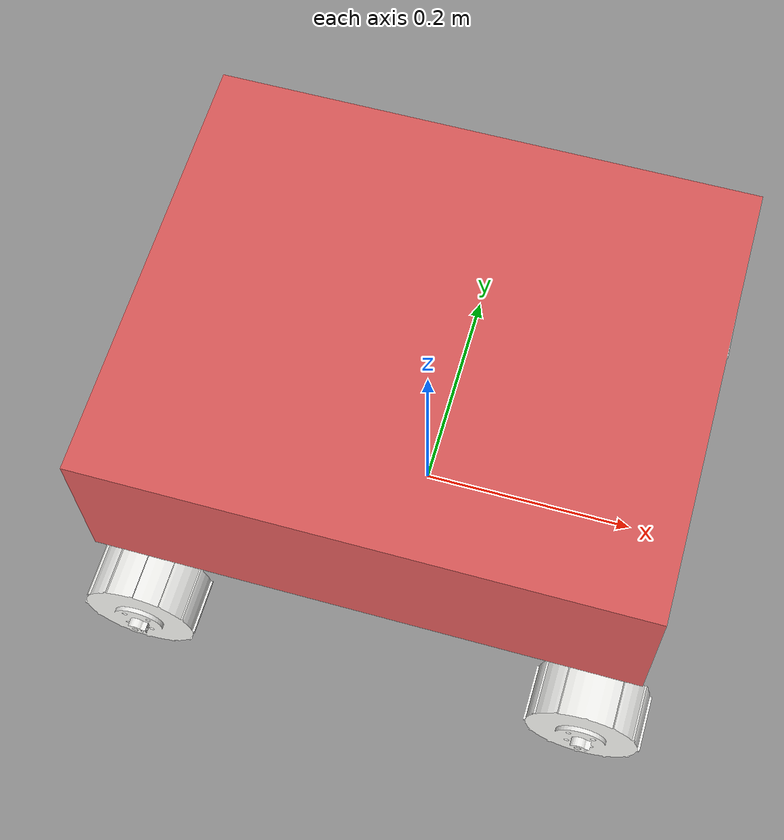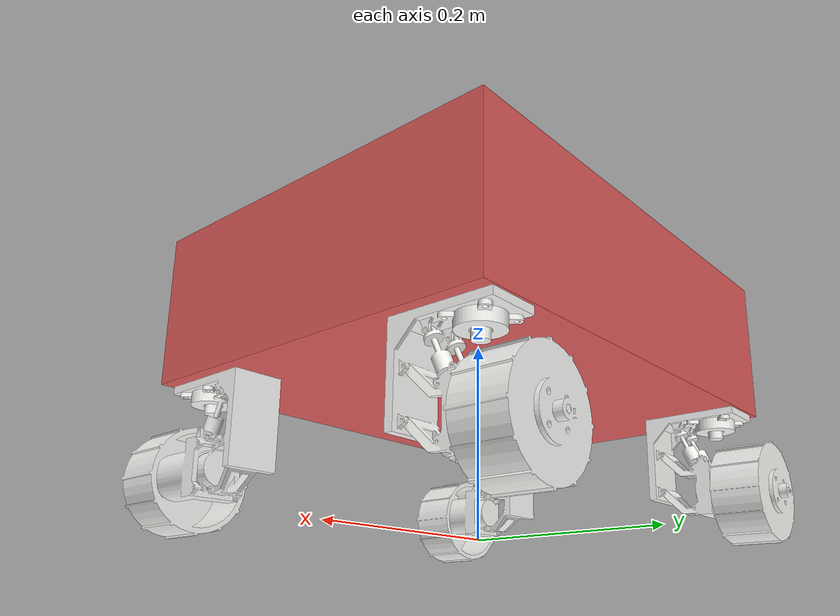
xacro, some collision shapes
<?xml version="1.0" encoding="utf-8"?>
<!-- Clean robot description only. Gazebo and ros2_control live in robot.gazebo.xacro. -->
<robot xmlns:xacro="http://www.ros.org/wiki/xacro" name="robot">
  <xacro:arg name="mesh_dir" default="package://robot_description/meshes" />

  <xacro:arg name="use_lidar" default="true" />
  <xacro:arg name="lidar_xyz" default="0.1 0 0.09" />
  <xacro:arg name="lidar_rpy" default="0 0 0" />

  <xacro:arg name="use_camera" default="true" />
  <xacro:arg name="camera_xyz" default="0.16 0 0.02" />
  <xacro:arg name="camera_rpy" default="0 0 0" />

  <xacro:include filename="robot.core.xacro" />
  <xacro:include filename="robot.lidar.xacro" />
  <xacro:include filename="robot.camera.xacro" />
  <xacro:robot_robot mesh_dir="$(arg mesh_dir)" />

  <xacro:if value="$(arg use_lidar)">
    <xacro:robot_lidar
      parent="chassis_link"
      xyz="$(arg lidar_xyz)"
      rpy="$(arg lidar_rpy)"
      add_gazebo="false" />
  </xacro:if>

  <xacro:if value="$(arg use_camera)">
    <xacro:robot_camera
      parent="chassis_link"
      xyz="$(arg camera_xyz)"
      rpy="$(arg camera_rpy)"
      add_gazebo="true" />
  </xacro:if>
</robot>

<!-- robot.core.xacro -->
<robot xmlns:xacro="http://www.ros.org/wiki/xacro">
  <xacro:macro
    name="mesh_box_link"
    params="name inertial_xyz mass ixx ixy ixz iyy iyz izz mesh_file rgba collision_origin collision_size mesh_uri_root">
    <link name="${name}">
      <inertial>
        <origin xyz="${inertial_xyz}" rpy="0 0 0" />
        <mass value="${mass}" />
        <inertia
          ixx="${ixx}"
          ixy="${ixy}"
          ixz="${ixz}"
          iyy="${iyy}"
          iyz="${iyz}"
          izz="${izz}" />
      </inertial>
      <visual>
        <origin xyz="0 0 0" rpy="0 0 0" />
        <geometry>
          <mesh filename="${mesh_uri_root}/${mesh_file}" />
        </geometry>
        <material name="">
          <color rgba="${rgba}" />
        </material>
      </visual>
      <collision>
        <origin xyz="${collision_origin}" rpy="0 0 0" />
        <geometry>
          <box size="${collision_size}" />
        </geometry>
      </collision>
    </link>
  </xacro:macro>

  <xacro:macro
    name="mesh_cylinder_link"
    params="name inertial_xyz mass ixx ixy ixz iyy iyz izz mesh_file rgba collision_origin collision_radius collision_length mesh_uri_root">
    <link name="${name}">
      <inertial>
        <origin xyz="${inertial_xyz}" rpy="0 0 0" />
        <mass value="${mass}" />
        <inertia
          ixx="${ixx}"
          ixy="${ixy}"
          ixz="${ixz}"
          iyy="${iyy}"
          iyz="${iyz}"
          izz="${izz}" />
      </inertial>
      <visual>
        <origin xyz="0 0 0" rpy="0 0 0" />
        <geometry>
          <mesh filename="${mesh_uri_root}/${mesh_file}" />
        </geometry>
        <material name="">
          <color rgba="${rgba}" />
        </material>
      </visual>
      <collision>
        <origin xyz="${collision_origin}" rpy="0 0 0" />
        <geometry>
          <cylinder radius="${collision_radius}" length="${collision_length}" />
        </geometry>
      </collision>
    </link>
  </xacro:macro>

  <xacro:macro name="steer_joint" params="name xyz parent child limit effort velocity damping friction">
    <joint name="${name}" type="revolute">
      <origin xyz="${xyz}" rpy="0 0 0" />
      <parent link="${parent}" />
      <child link="${child}" />
      <axis xyz="0 0 1" />
      <limit lower="${-limit}" upper="${limit}" effort="${effort}" velocity="${velocity}" />
      <dynamics damping="${damping}" friction="${friction}" />
    </joint>
  </xacro:macro>

  <xacro:macro name="drive_joint" params="name xyz rpy parent child axis effort velocity damping friction">
    <joint name="${name}" type="continuous">
      <origin xyz="${xyz}" rpy="${rpy}" />
      <parent link="${parent}" />
      <child link="${child}" />
      <axis xyz="${axis}" />
      <limit effort="${effort}" velocity="${velocity}" />
      <dynamics damping="${damping}" friction="${friction}" />
    </joint>
  </xacro:macro>

  <xacro:macro name="robot_robot" params="mesh_dir">
    <xacro:property name="mesh_uri_root" value="${mesh_dir}" />
    <xacro:property name="front_steer_limit" value="1.5708" />
    <xacro:property name="rear_steer_limit" value="1.5708" />
    <xacro:property name="joint_effort" value="10" />
    <xacro:property name="joint_velocity" value="10" />
    <xacro:property name="joint_damping" value="0.1" />
    <xacro:property name="joint_friction" value="0.1" />
    <xacro:property name="wheel_rgba" value="0.964705882352941 0.964705882352941 0.952941176470588 1" />
    <xacro:property name="base_rgba" value="0.854901960784314 0.349019607843137 0.349019607843137 1" />
    <xacro:property name="wheel_collision_length" value="0.062" />

    <xacro:property name="wheel_radius" value="0.052" />
    <xacro:property name="track_width" value="0.33112" />
    <xacro:property name="front_axle_x" value="0.201335" />
    <xacro:property name="rear_axle_x" value="-0.204665" />
    <xacro:property name="wheelbase" value="${front_axle_x - rear_axle_x}" />
    <xacro:property name="left_steer_y" value="${track_width / 2.0}" />
    <xacro:property name="right_steer_y" value="${-track_width / 2.0}" />
    <xacro:property name="steer_mount_z_nominal" value="0.04325" />

    <xacro:property name="front_left_steer_xyz" value="${front_axle_x + 0.000065} ${left_steer_y} ${steer_mount_z_nominal + 0.000001}" />
    <xacro:property name="front_right_steer_xyz" value="${front_axle_x - 0.000065} ${right_steer_y} ${steer_mount_z_nominal}" />
    <xacro:property name="back_left_steer_xyz" value="${rear_axle_x - 0.000065} ${left_steer_y} ${steer_mount_z_nominal + 0.001999}" />
    <xacro:property name="back_right_steer_xyz" value="${rear_axle_x + 0.000065} ${right_steer_y} ${steer_mount_z_nominal}" />

    <xacro:property name="front_left_wheel_offset_xyz" value="-0.00095872 0.072001 -0.13909" />
    <xacro:property name="back_left_wheel_offset_xyz" value="-0.0005765 0.072005 -0.14109" />
    <xacro:property name="back_right_wheel_offset_xyz" value="-0.00071852 -0.073582 -0.1361" />
    <xacro:property name="front_right_wheel_offset_xyz" value="-0.00076762 -0.072004 -0.13909" />

    <xacro:property name="front_left_wheel_rpy" value="-1.5708 0 0.015251" />
    <xacro:property name="back_left_wheel_rpy" value="-1.5708 0 0.0099427" />
    <xacro:property name="back_right_wheel_rpy" value="-1.5708 0 -0.0078748" />
    <xacro:property name="front_right_wheel_rpy" value="-1.5708 0 -0.0087292" />
    <xacro:property name="base_footprint_to_base_link_z" value="0.1478" />

    <link name="base_footprint" />

    <link name="base_link" />

    <joint name="base_footprint_joint" type="fixed">
      <origin xyz="0 0 ${base_footprint_to_base_link_z}" rpy="0 0 0" />
      <parent link="base_footprint" />
      <child link="base_link" />
    </joint>

    <xacro:mesh_box_link
      name="chassis_link"
      inertial_xyz="-0.0202853583615552 -0.0035672102008257 0.0384224210186663"
      mass="2.2668069894461"
      ixx="0.00935572177906156"
      ixy="7.8725799589304E-09"
      ixz="0.00155513248174071"
      iyy="0.013073444250648"
      iyz="-4.07017227501552E-08"
      izz="0.017855946897602"
      mesh_file="base_link.STL"
      rgba="${base_rgba}"
      collision_origin="-0.001575 0 0.069"
      collision_size="0.480668 0.396114 0.150001"
      mesh_uri_root="${mesh_uri_root}" />

    <joint name="base_to_chassis_joint" type="fixed">
      <origin xyz="0 0 0" rpy="0 0 0" />
      <parent link="base_link" />
      <child link="chassis_link" />
    </joint>

    <link name="imu_link">
      <inertial>
        <origin xyz="0 0 0" rpy="0 0 0" />
        <mass value="0.001" />
        <inertia ixx="1e-6" ixy="0.0" ixz="0.0" iyy="1e-6" iyz="0.0" izz="1e-6" />
      </inertial>
    </link>

    <joint name="imu_joint" type="fixed">
      <origin xyz="0 0 0.08" rpy="0 0 0" />
      <parent link="chassis_link" />
      <child link="imu_link" />
    </joint>

    <xacro:mesh_box_link
      name="front_left_steer"
      inertial_xyz="0.00013064414965952 -0.00712793384390203 -0.099167907470358"
      mass="0.251781132487417"
      ixx="0.00021743551373503"
      ixy="1.36860311137519E-06"
      ixz="5.07501890882553E-07"
      iyy="0.000126727845844533"
      iyz="-3.34647392291718E-05"
      izz="0.000169195629547439"
      mesh_file="front_left_steer.STL"
      rgba="${wheel_rgba}"
      collision_origin="0.000305 0.000836 -0.079148"
      collision_size="0.051519 0.142418 0.160397"
      mesh_uri_root="${mesh_uri_root}" />

    <xacro:steer_joint
      name="f_left_steer"
      xyz="${front_left_steer_xyz}"
      parent="chassis_link"
      child="front_left_steer"
      limit="${front_steer_limit}"
      effort="${joint_effort}"
      velocity="${joint_velocity}"
      damping="${joint_damping}"
      friction="${joint_friction}" />

    <xacro:mesh_cylinder_link
      name="front_left_wheel"
      inertial_xyz="-0.000152709268499918 -9.70744181462424E-07 -0.0293675372404548"
      mass="0.115832809619263"
      ixx="0.000133495109179925"
      ixy="7.48118425206543E-14"
      ixz="4.06679703392529E-09"
      iyy="0.000133508500148116"
      iyz="-7.10495622112089E-10"
      izz="0.000211939042658774"
      mesh_file="front_left_wheel.STL"
      rgba="${wheel_rgba}"
      collision_origin="-0.000145 0 -0.031"
      collision_radius="${wheel_radius}"
      collision_length="${wheel_collision_length}"
      mesh_uri_root="${mesh_uri_root}" />

    <xacro:drive_joint
      name="f_leftwheel"
      xyz="${front_left_wheel_offset_xyz}"
      rpy="${front_left_wheel_rpy}"
      parent="front_left_steer"
      child="front_left_wheel"
      axis="0 0 1"
      effort="${joint_effort}"
      velocity="${joint_velocity}"
      damping="${joint_damping}"
      friction="${joint_friction}" />

    <xacro:mesh_box_link
      name="back_left_steer"
      inertial_xyz="9.28109305935038E-05 -0.00712852545284898 -0.101167907583658"
      mass="0.251781132525178"
      ixx="0.000217447487430463"
      ixy="8.87032766970658E-07"
      ixz="3.29855165907127E-07"
      iyy="0.000126715873155165"
      iyz="-3.34669623327156E-05"
      izz="0.000169195628565899"
      mesh_file="back_left_steer.STL"
      rgba="${wheel_rgba}"
      collision_origin="0.000199 0.000894 -0.081148"
      collision_size="0.050992 0.142279 0.160397"
      mesh_uri_root="${mesh_uri_root}" />

    <xacro:steer_joint
      name="b_leftsteer"
      xyz="${back_left_steer_xyz}"
      parent="chassis_link"
      child="back_left_steer"
      limit="${rear_steer_limit}"
      effort="${joint_effort}"
      velocity="${joint_velocity}"
      damping="${joint_damping}"
      friction="${joint_friction}" />

    <xacro:mesh_cylinder_link
      name="back_left_wheel"
      inertial_xyz="-0.000152709267548859 -9.71167783692106E-07 -0.029367537223414"
      mass="0.115832809709875"
      ixx="0.000133495109180129"
      ixy="3.73920551199565E-14"
      ixz="4.06679907772533E-09"
      iyy="0.00013350850014901"
      iyz="-7.10484063198117E-10"
      izz="0.000211939042658999"
      mesh_file="back_left_wheel.STL"
      rgba="${wheel_rgba}"
      collision_origin="-0.000145 0 -0.031"
      collision_radius="${wheel_radius}"
      collision_length="${wheel_collision_length}"
      mesh_uri_root="${mesh_uri_root}" />

    <xacro:drive_joint
      name="b_leftwheel"
      xyz="${back_left_wheel_offset_xyz}"
      rpy="${back_left_wheel_rpy}"
      parent="back_left_steer"
      child="back_left_wheel"
      axis="0 0 1"
      effort="${joint_effort}"
      velocity="${joint_velocity}"
      damping="${joint_damping}"
      friction="${joint_friction}" />

    <xacro:mesh_box_link
      name="back_right_steer"
      inertial_xyz="3.09555434352959E-05 0.00694767645726482 -0.104187659676429"
      mass="0.229463165297732"
      ixx="0.000207384199528673"
      ixy="-7.31104211905778E-07"
      ixz="2.67266326731571E-07"
      iyy="0.000116493139211524"
      iyz="3.35524819424789E-05"
      izz="0.00016798247146896"
      mesh_file="back_right_steer.STL"
      rgba="${wheel_rgba}"
      collision_origin="0.000157 -0.001704 -0.096554"
      collision_size="0.050786 0.143797 0.119607"
      mesh_uri_root="${mesh_uri_root}" />

    <xacro:steer_joint
      name="b_rightsteer"
      xyz="${back_right_steer_xyz}"
      parent="chassis_link"
      child="back_right_steer"
      limit="${rear_steer_limit}"
      effort="${joint_effort}"
      velocity="${joint_velocity}"
      damping="${joint_damping}"
      friction="${joint_friction}" />

    <xacro:mesh_cylinder_link
      name="back_right_wheel"
      inertial_xyz="0.000152709273591192 -9.71170377131458E-07 0.0293675371615253"
      mass="0.115832810022218"
      ixx="0.000133495109183378"
      ixy="-3.62614646190951E-14"
      ixz="4.06680017161528E-09"
      iyy="0.000133508500154647"
      iyz="7.10483036587695E-10"
      izz="0.000211939042659798"
      mesh_file="back_right_wheel.STL"
      rgba="${wheel_rgba}"
      collision_origin="0.000145 0 0.031"
      collision_radius="${wheel_radius}"
      collision_length="${wheel_collision_length}"
      mesh_uri_root="${mesh_uri_root}" />

    <xacro:drive_joint
      name="b_rightwheel"
      xyz="${back_right_wheel_offset_xyz}"
      rpy="${back_right_wheel_rpy}"
      parent="back_right_steer"
      child="back_right_wheel"
      axis="0 0 -1"
      effort="${joint_effort}"
      velocity="${joint_velocity}"
      damping="${joint_damping}"
      friction="${joint_friction}" />

    <xacro:mesh_box_link
      name="front_right_steer"
      inertial_xyz="4.05809295395687E-05 0.00712901046523262 -0.0991679078738846"
      mass="0.251781132690095"
      ixx="0.000217448974290903"
      ixy="-8.0742080901355E-07"
      ixz="2.95193136544424E-07"
      iyy="0.00012671438820613"
      iyz="3.34672871896417E-05"
      izz="0.000169195626775715"
      mesh_file="front_right_steer.STL"
      rgba="${wheel_rgba}"
      collision_origin="0.000175 -0.000905 -0.079148"
      collision_size="0.050871 0.142241 0.160397"
      mesh_uri_root="${mesh_uri_root}" />

    <xacro:steer_joint
      name="f_right_steer"
      xyz="${front_right_steer_xyz}"
      parent="chassis_link"
      child="front_right_steer"
      limit="${front_steer_limit}"
      effort="${joint_effort}"
      velocity="${joint_velocity}"
      damping="${joint_damping}"
      friction="${joint_friction}" />

    <xacro:mesh_cylinder_link
      name="front_right_wheel"
      inertial_xyz="0.00015270927387756 -9.71170482401418E-07 0.0293675371584356"
      mass="0.115832810036923"
      ixx="0.000133495109183675"
      ixy="-3.62122798652987E-14"
      ixz="4.06680027009567E-09"
      iyy="0.000133508500155057"
      iyz="7.10482989342022E-10"
      izz="0.000211939042659837"
      mesh_file="front_right_wheel.STL"
      rgba="${wheel_rgba}"
      collision_origin="0.000145 0 0.031"
      collision_radius="${wheel_radius}"
      collision_length="${wheel_collision_length}"
      mesh_uri_root="${mesh_uri_root}" />

    <xacro:drive_joint
      name="f_rightwheel"
      xyz="${front_right_wheel_offset_xyz}"
      rpy="${front_right_wheel_rpy}"
      parent="front_right_steer"
      child="front_right_wheel"
      axis="0 0 -1"
      effort="${joint_effort}"
      velocity="${joint_velocity}"
      damping="${joint_damping}"
      friction="${joint_friction}" />
  </xacro:macro>
</robot>

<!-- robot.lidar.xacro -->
<robot xmlns:xacro="http://www.ros.org/wiki/xacro">
  <xacro:macro
    name="robot_lidar"
    params="
      parent:=chassis_link
      xyz:='0 0 0.15'
      rpy:='0 0 0'
      add_gazebo:=false
      topic:=/scan
      update_rate:=15.0
      sample_count:=720
      min_angle:=-3.14159
      max_angle:=3.14159
      min_range:=0.10
      max_range:=12.0">

    <link name="lidar_link">
      <inertial>
        <origin xyz="0 0 0" rpy="0 0 0" />
        <mass value="0.15" />
        <inertia ixx="1e-4" ixy="0.0" ixz="0.0" iyy="1e-4" iyz="0.0" izz="1e-4" />
      </inertial>

      <visual>
        <origin xyz="0 0 0" rpy="0 0 0" />
        <geometry>
          <cylinder radius="0.035" length="0.05" />
        </geometry>
        <material name="lidar_gray">
          <color rgba="0.2 0.2 0.2 1.0" />
        </material>
      </visual>

      <collision>
        <origin xyz="0 0 0" rpy="0 0 0" />
        <geometry>
          <cylinder radius="0.035" length="0.05" />
        </geometry>
      </collision>
    </link>

    <joint name="lidar_joint" type="fixed">
      <origin xyz="${xyz}" rpy="${rpy}" />
      <parent link="${parent}" />
      <child link="lidar_link" />
    </joint>

    <xacro:if value="${add_gazebo}">
      <gazebo reference="lidar_link">
        <sensor name="lidar_sensor" type="gpu_lidar">
          <always_on>1</always_on>
          <update_rate>${update_rate}</update_rate>
          <topic>${topic}</topic>
          <gz_frame_id>lidar_link</gz_frame_id>
          <lidar>
            <scan>
              <horizontal>
                <samples>${sample_count}</samples>
                <resolution>1</resolution>
                <min_angle>${min_angle}</min_angle>
                <max_angle>${max_angle}</max_angle>
              </horizontal>
            </scan>
            <range>
              <min>${min_range}</min>
              <max>${max_range}</max>
              <resolution>0.01</resolution>
            </range>
            <noise>
              <type>gaussian</type>
              <mean>0.0</mean>
              <stddev>0.005</stddev>
            </noise>
          </lidar>
          <visualize>true</visualize>
        </sensor>
      </gazebo>
    </xacro:if>
  </xacro:macro>
</robot>

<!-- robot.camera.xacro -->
<robot xmlns:xacro="http://www.ros.org/wiki/xacro">
  <xacro:macro
    name="robot_camera"
    params="
      parent:=chassis_link
      xyz:='0.15 0.0 0.0195'
      rpy:='0 0 0'
      add_gazebo:=false
      topic:=/camera/image_raw
      update_rate:=30.0
      width:=1280
      height:=720
      hfov:=1.5184
      vfov:=1.0122
      near_clip:=0.07
      far_clip:=8.0
      stereo_baseline:=0.018
      dimension_x:=0.042
      dimension_y:=0.042
      dimension_z:=0.023
      ">

    <link name="camera_link">
      <inertial>
        <origin xyz="0 0 0" rpy="0 0 0" />
        <mass value="0.0387416202428435" />
        <inertia
          ixx="1.08456634317136E-05"
          ixy="0.0"
          ixz="0.0"
          iyy="7.10436611069618E-06"
          iyz="0.0"
          izz="7.1103467824982E-06" />
      </inertial>

      <visual>
        <origin xyz="0 0 0" rpy="0 0 0" />
        <geometry>
          <mesh filename="package://robot_description/meshes/camera_link.STL" />
        </geometry>
        <material name="camera_body">
          <color rgba="0.05 0.12 0.55 1" />
        </material>
      </visual>

      <collision>
        <origin xyz="0 0 0" rpy="0 0 0" />
        <geometry>
          <box size="0.023 0.0421 0.0420" />
        </geometry>
      </collision>
    </link>

    <joint name="camera_joint" type="fixed">
      <origin xyz="${xyz}" rpy="${rpy}" />
      <parent link="${parent}" />
      <child link="camera_link" />
    </joint>

    <link name="camera_optical_link">
      <inertial>
        <origin xyz="0 0 0" rpy="0 0 0" />
        <mass value="0.001" />
        <inertia ixx="1e-6" ixy="0.0" ixz="0.0" iyy="1e-6" iyz="0.0" izz="1e-6" />
      </inertial>
    </link>

    <joint name="camera_optical_joint" type="fixed">
      <origin xyz="0 0 0" rpy="-1.5708 0 -1.5708" />
      <parent link="camera_link" />
      <child link="camera_optical_link" />
    </joint>

    <xacro:if value="${add_gazebo}">
      <gazebo reference="camera_link">
        <material>Gazebo/Blue</material>
        <sensor name="camera_sensor" type="rgbd_camera">
          <always_on>1</always_on>
          <update_rate>${update_rate}</update_rate>
          <topic>${topic}</topic>
          <gz_frame_id>camera_optical_link</gz_frame_id>
          <camera>
            <horizontal_fov>${hfov}</horizontal_fov>
            <image>
              <width>${width}</width>
              <height>${height}</height>
              <format>R8G8B8</format>
            </image>
            <clip>
              <near>${near_clip}</near>
              <far>${far_clip}</far>
            </clip>
            <noise>
              <type>gaussian</type>
              <mean>0.0</mean>
              <stddev>0.003</stddev>
            </noise>
          </camera>
          <visualize>true</visualize>
        </sensor>
      </gazebo>
    </xacro:if>
  </xacro:macro>
</robot>
